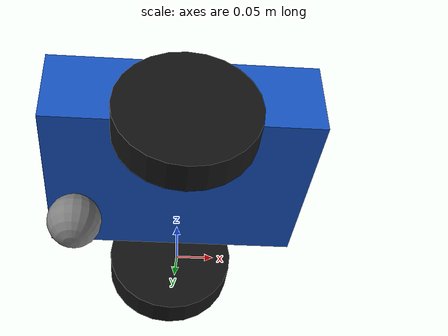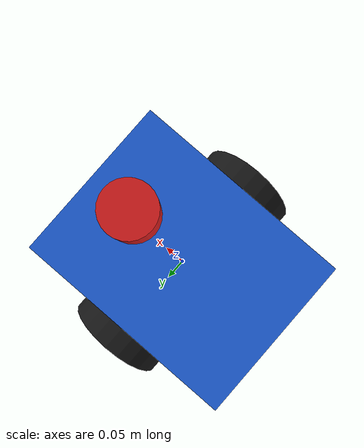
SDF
<?xml version="1.0"?>
<sdf version="1.9">
  <model name="training_robot">
    <static>false</static>
    <self_collide>false</self_collide>

    <link name="base_link">
      <pose>0 0 0.18 0 0 0</pose>
      <inertial>
        <mass>5.0</mass>
        <inertia>
          <ixx>0.05</ixx>
          <iyy>0.08</iyy>
          <izz>0.10</izz>
        </inertia>
      </inertial>
      <collision name="base_collision">
        <geometry><box><size>0.40 0.30 0.12</size></box></geometry>
      </collision>
      <visual name="base_visual">
        <geometry><box><size>0.40 0.30 0.12</size></box></geometry>
        <material>
          <ambient>0.10 0.35 0.80 1</ambient>
          <diffuse>0.10 0.35 0.80 1</diffuse>
        </material>
      </visual>
    </link>

    <link name="left_wheel">
      <pose>0 0.18 0.10 1.570796 0 0</pose>
      <inertial>
        <mass>0.5</mass>
        <inertia><ixx>0.002</ixx><iyy>0.002</iyy><izz>0.002</izz></inertia>
      </inertial>
      <collision name="collision">
        <geometry><cylinder><radius>0.10</radius><length>0.05</length></cylinder></geometry>
        <surface><friction><ode><mu>1.0</mu><mu2>1.0</mu2></ode></friction></surface>
      </collision>
      <visual name="visual">
        <geometry><cylinder><radius>0.10</radius><length>0.05</length></cylinder></geometry>
        <material><ambient>0.08 0.08 0.08 1</ambient><diffuse>0.08 0.08 0.08 1</diffuse></material>
      </visual>
    </link>

    <link name="right_wheel">
      <pose>0 -0.18 0.10 1.570796 0 0</pose>
      <inertial>
        <mass>0.5</mass>
        <inertia><ixx>0.002</ixx><iyy>0.002</iyy><izz>0.002</izz></inertia>
      </inertial>
      <collision name="collision">
        <geometry><cylinder><radius>0.10</radius><length>0.05</length></cylinder></geometry>
        <surface><friction><ode><mu>1.0</mu><mu2>1.0</mu2></ode></friction></surface>
      </collision>
      <visual name="visual">
        <geometry><cylinder><radius>0.10</radius><length>0.05</length></cylinder></geometry>
        <material><ambient>0.08 0.08 0.08 1</ambient><diffuse>0.08 0.08 0.08 1</diffuse></material>
      </visual>
    </link>

    <link name="caster">
      <pose>-0.15 0 0.055 0 0 0</pose>
      <inertial>
        <mass>0.2</mass>
        <inertia><ixx>0.0002</ixx><iyy>0.0002</iyy><izz>0.0002</izz></inertia>
      </inertial>
      <collision name="collision">
        <geometry><sphere><radius>0.04</radius></sphere></geometry>
        <surface><friction><ode><mu>0.01</mu><mu2>0.01</mu2></ode></friction></surface>
      </collision>
      <visual name="visual">
        <geometry><sphere><radius>0.04</radius></sphere></geometry>
        <material><ambient>0.5 0.5 0.5 1</ambient><diffuse>0.5 0.5 0.5 1</diffuse></material>
      </visual>
    </link>

    <link name="lidar_link">
      <pose>0.10 0 0.29 0 0 0</pose>
      <inertial>
        <mass>0.1</mass>
        <inertia><ixx>0.0001</ixx><iyy>0.0001</iyy><izz>0.0001</izz></inertia>
      </inertial>
      <visual name="visual">
        <geometry><cylinder><radius>0.045</radius><length>0.05</length></cylinder></geometry>
        <material><ambient>0.8 0.1 0.1 1</ambient><diffuse>0.8 0.1 0.1 1</diffuse></material>
      </visual>
      <sensor name="lidar" type="gpu_lidar">
        <topic>/scan</topic>
        <update_rate>10</update_rate>
        <always_on>true</always_on>
        <visualize>true</visualize>
        <lidar>
          <scan>
            <horizontal>
              <samples>360</samples>
              <resolution>1</resolution>
              <min_angle>-3.141592</min_angle>
              <max_angle>3.141592</max_angle>
            </horizontal>
          </scan>
          <range>
            <min>0.08</min>
            <max>8.0</max>
            <resolution>0.01</resolution>
          </range>
        </lidar>
      </sensor>
    </link>

    <joint name="left_wheel_joint" type="revolute">
      <parent>base_link</parent>
      <child>left_wheel</child>
      <axis><xyz>0 1 0</xyz></axis>
    </joint>
    <joint name="right_wheel_joint" type="revolute">
      <parent>base_link</parent>
      <child>right_wheel</child>
      <axis><xyz>0 1 0</xyz></axis>
    </joint>
    <joint name="caster_joint" type="ball">
      <parent>base_link</parent>
      <child>caster</child>
    </joint>
    <joint name="lidar_joint" type="fixed">
      <parent>base_link</parent>
      <child>lidar_link</child>
    </joint>

    <plugin filename="gz-sim-diff-drive-system" name="gz::sim::systems::DiffDrive">
      <left_joint>left_wheel_joint</left_joint>
      <right_joint>right_wheel_joint</right_joint>
      <wheel_separation>0.36</wheel_separation>
      <wheel_radius>0.10</wheel_radius>
      <topic>/model/training_robot/cmd_vel</topic>
      <odom_topic>/model/training_robot/odometry</odom_topic>
      <tf_topic>/model/training_robot/tf</tf_topic>
      <frame_id>odom</frame_id>
      <child_frame_id>base_link</child_frame_id>
      <odom_publish_frequency>30</odom_publish_frequency>
      <max_linear_velocity>1.0</max_linear_velocity>
      <max_angular_velocity>2.0</max_angular_velocity>
    </plugin>
  </model>
</sdf>
